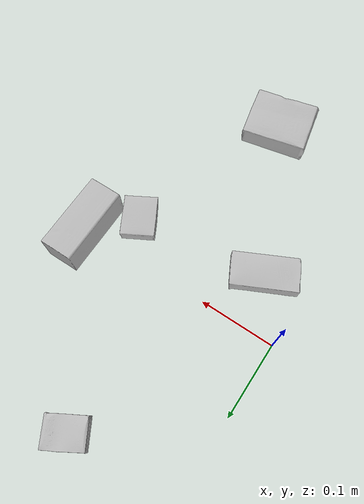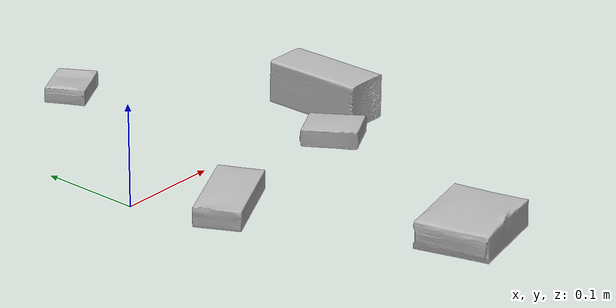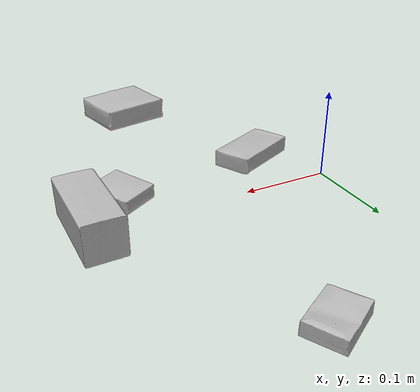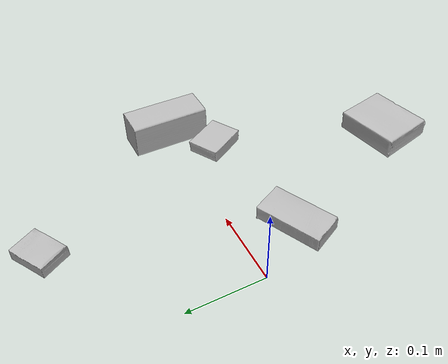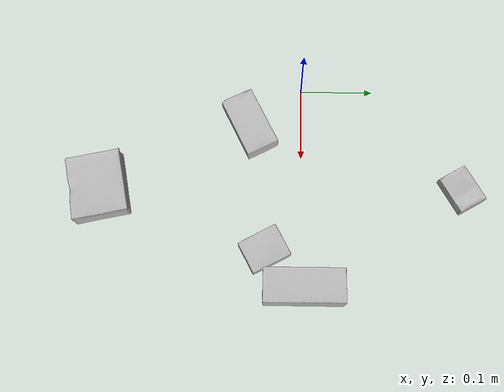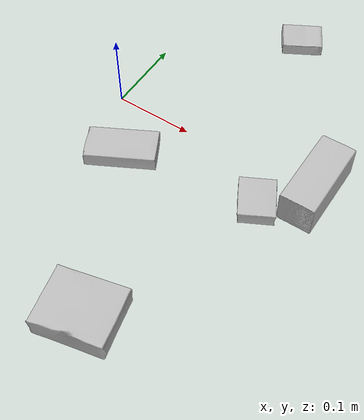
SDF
<sdf version="1.4">
  <world name="default">
    <light name="light1" type="point">
      <pose>0 0 1 0 0 0</pose>
      <diffuse>3 3 3 1</diffuse>
      <specular>3 3 3 1</specular>
    </light>
    <light name="light2" type="point">
      <pose>0 0.5 2 0 0 0</pose>
      <diffuse>1 1 1 1</diffuse>
      <specular>1 1 1 1</specular>
    </light>
    <light name="light3" type="point">
      <pose>0 0.5 2 0 0 0</pose>
      <diffuse>3 3 3 1</diffuse>
      <specular>3 3 3 1</specular>
    </light>
    <scene>
      <ambient>0.7 0.7 0.7</ambient>
    </scene>
    <model name="box1">
      <link name="link_box1">
        <collision name="default">
          <geometry>
            <mesh>
              <uri>model://gelatin_box/collision_meshes/collision.obj</uri>
              <scale>1.0 1.0 1.0</scale>
            </mesh>
          </geometry>
          <surface>
            <friction>
              <ode>
                <mu>0.5</mu>
                <mu2>0.5</mu2>
              </ode>
            </friction>
          <contact>
        <ode>
            <max_vel>0</max_vel>
            <min_depth>0.0001</min_depth>
            <kp>1e8</kp>
        </ode>
    </contact></surface>
        </collision>
        <visual name="default">
          <geometry>
            <mesh>
              <uri>model://gelatin_box/visual_meshes/visual.dae</uri>
              <scale>1.0 1.0 1.0</scale>
            </mesh>
          </geometry>
        </visual>
        <inertial>
          <mass>0.2001359760761261</mass>
          <pose>0.0004319618456065655 0.00011156872642459348 -0.00036403213744051754 -0.0010503718728910522 -0.00475581915504666 0.01644056319729456</pose>
          <inertia>
            <ixx>0.00014127967</ixx>
            <iyy>0.00010091532</iyy>
            <izz>0.00021505913</izz>
            <ixy>0</ixy>
            <ixz>0</ixz>
            <iyz>0</iyz>
          </inertia>
        </inertial>
      </link>
      <pose>0.14675958454608917 -0.26994451880455017 0.015168308280408382 0.005597086791915795 -0.007304166425566783 -1.3629442870693311</pose>
    </model>
    <model name="box2">
      <link name="link_box2">
        <collision name="default">
          <geometry>
            <mesh>
              <uri>model://cracker_box/collision_meshes/collision.obj</uri>
              <scale>0.25 0.25 0.25</scale>
            </mesh>
          </geometry>
          <surface>
            <friction>
              <ode>
                <mu>0.5</mu>
                <mu2>0.5</mu2>
              </ode>
            </friction>
          <contact>
        <ode>
            <max_vel>0</max_vel>
            <min_depth>0.0001</min_depth>
            <kp>1e8</kp>
        </ode>
    </contact></surface>
        </collision>
        <visual name="default">
          <geometry>
            <mesh>
              <uri>model://cracker_box/visual_meshes/visual.dae</uri>
              <scale>0.25 0.25 0.25</scale>
            </mesh>
          </geometry>
        </visual>
        <inertial>
          <mass>0.052757441997528076</mass>
          <pose>0.00023660421720705926 6.358561950037256e-05 -0.0004257383698131889 -0.0003162076882876523 -0.011106491463043667 0.002546795002652857</pose>
          <inertia>
            <ixx>8.38696e-06</ixx>
            <iyy>1.384852e-05</iyy>
            <izz>1.9763109e-05</izz>
            <ixy>0</ixy>
            <ixz>0</ixz>
            <iyz>0</iyz>
          </inertia>
        </inertial>
      </link>
      <pose>0.1450815498828888 0.21390306949615479 0.009120450355112553 -0.011787954665684046 -0.007367177378366979 -2.62488236990978</pose>
    </model>
    <model name="box3">
      <link name="link_box3">
        <collision name="default">
          <geometry>
            <mesh>
              <uri>model://wood_block/collision_meshes/collision.obj</uri>
              <scale>0.5 0.5 0.5</scale>
            </mesh>
          </geometry>
          <surface>
            <friction>
              <ode>
                <mu>0.5</mu>
                <mu2>0.5</mu2>
              </ode>
            </friction>
          <contact>
        <ode>
            <max_vel>0</max_vel>
            <min_depth>0.0001</min_depth>
            <kp>1e8</kp>
        </ode>
    </contact></surface>
        </collision>
        <visual name="default">
          <geometry>
            <mesh>
              <uri>model://wood_block/visual_meshes/visual.dae</uri>
              <scale>0.5 0.5 0.5</scale>
            </mesh>
          </geometry>
        </visual>
        <inertial>
          <mass>0.15567830204963684</mass>
          <pose>-2.9066577553749084e-06 -0.000285404734313488 0.00013204292918089777 -0.052210429644919926 -0.005192696852900695 -0.006861378081336091</pose>
          <inertia>
            <ixx>5.2080282e-05</ixx>
            <iyy>0.00016452163</iyy>
            <izz>0.00016390622</izz>
            <ixy>0</ixy>
            <ixz>0</ixz>
            <iyz>0</iyz>
          </inertia>
        </inertial>
      </link>
      <pose>0.27791738510131836 0.0024588757660239935 0.022629259154200554 -0.005208519554511564 0.005718781491344133 -1.5677892087958885</pose>
    </model>
    <model name="box4">
      <link name="link_box4">
        <collision name="default">
          <geometry>
            <mesh>
              <uri>model://pudding_box/collision_meshes/collision.obj</uri>
              <scale>0.5 0.5 0.5</scale>
            </mesh>
          </geometry>
          <surface>
            <friction>
              <ode>
                <mu>0.5</mu>
                <mu2>0.5</mu2>
              </ode>
            </friction>
          <contact>
        <ode>
            <max_vel>0</max_vel>
            <min_depth>0.0001</min_depth>
            <kp>1e8</kp>
        </ode>
    </contact></surface>
        </collision>
        <visual name="default">
          <geometry>
            <mesh>
              <uri>model://pudding_box/visual_meshes/visual.dae</uri>
              <scale>0.5 0.5 0.5</scale>
            </mesh>
          </geometry>
        </visual>
        <inertial>
          <mass>0.0498165600001812</mass>
          <pose>0.00024474109522998333 0.00040339428232982755 -0.0002594413817860186 0.00521310227074754 -0.006603796865596143 0.02007982702575369</pose>
          <inertia>
            <ixx>1.4078764e-05</ixx>
            <iyy>9.472293e-06</iyy>
            <izz>2.0790974e-05</izz>
            <ixy>0</ixy>
            <ixz>0</ixz>
            <iyz>0</iyz>
          </inertia>
        </inertial>
      </link>
      <pose>0.22871805727481842 -0.04754522070288658 0.009862902574241161 0.022350226504708033 -0.011390420352183392 -2.6475130439128494</pose>
    </model>
    <model name="box5">
      <link name="link_box5">
        <collision name="default">
          <geometry>
            <mesh>
              <uri>model://sugar_box/collision_meshes/collision.obj</uri>
              <scale>0.5 0.5 0.5</scale>
            </mesh>
          </geometry>
          <surface>
            <friction>
              <ode>
                <mu>0.5</mu>
                <mu2>0.5</mu2>
              </ode>
            </friction>
          <contact>
        <ode>
            <max_vel>0</max_vel>
            <min_depth>0.0001</min_depth>
            <kp>1e8</kp>
        </ode>
    </contact></surface>
        </collision>
        <visual name="default">
          <geometry>
            <mesh>
              <uri>model://sugar_box/visual_meshes/visual.dae</uri>
              <scale>0.5 0.5 0.5</scale>
            </mesh>
          </geometry>
        </visual>
        <inertial>
          <mass>0.08508674055337906</mass>
          <pose>0.0005171863595023751 1.924554817378521e-05 -0.00018182402709499002 -0.0004046257768003499 0.0010506634050152445 0.002615378556389427</pose>
          <inertia>
            <ixx>1.7723507e-05</ixx>
            <iyy>5.7286023e-05</iyy>
            <izz>6.85782e-05</izz>
            <ixy>0</ixy>
            <ixz>0</ixz>
            <iyz>0</iyz>
          </inertia>
        </inertial>
      </link>
      <pose>0.05338085815310478 -0.07087292522192001 0.011399301700294018 0.0007753618718310708 -0.02343260556889671 0.4597839344626803</pose>
    </model>
  <physics type="ode">
      <max_contacts>50</max_contacts>
      <ode>
        <solver>
          <type>quick</type>
          <iters>75</iters>
        </solver>
        <constraints>
          <contact_max_correcting_vel>0</contact_max_correcting_vel>
          <contact_surface_layer>0</contact_surface_layer>
        </constraints>
      </ode>
    </physics></world>
</sdf>
